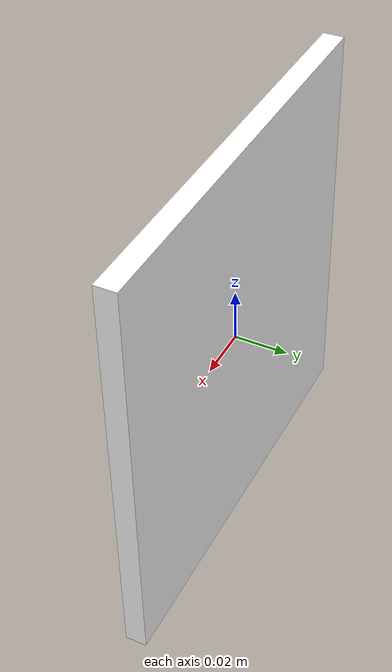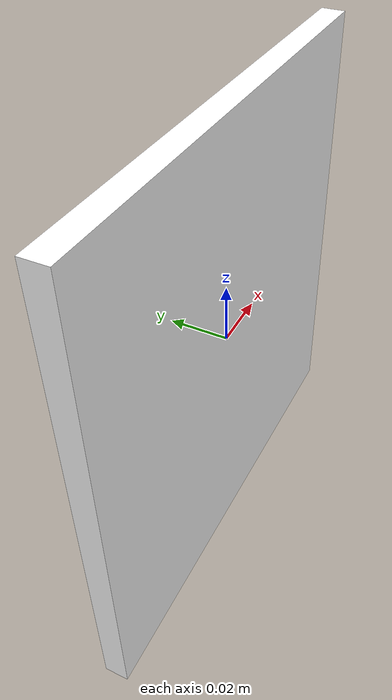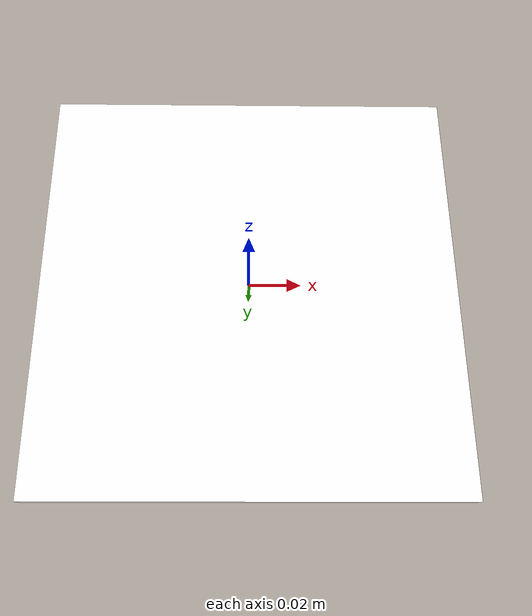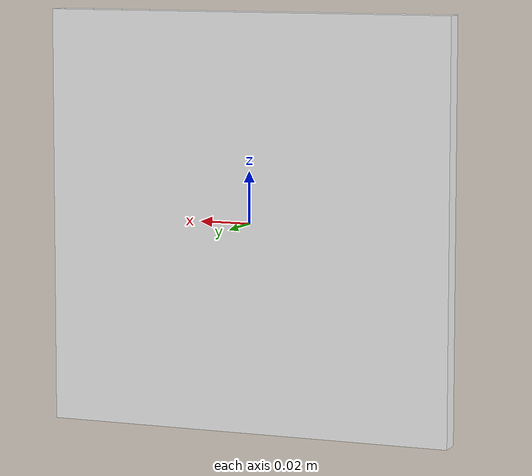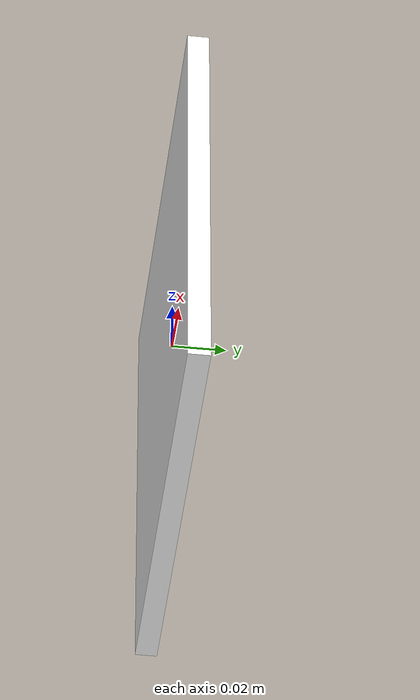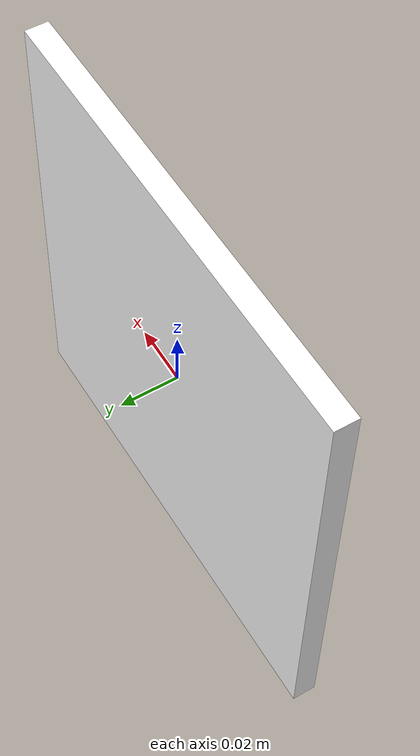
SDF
<?xml version="1.0"?>
<sdf version="1.8">
  <model name="apriltag_36h11_04">
    <static>true</static>
    <link name="link">
      <visual name="visual">
        <geometry>
          <box><size>0.16 0.008 0.16</size></box>
        </geometry>
        <material>
          <ambient>1 1 1 1</ambient>
          <diffuse>1 1 1 1</diffuse>
          <specular>0 0 0 1</specular>
          <pbr>
            <metal>
              <albedo_map>materials/textures/tag36_11_00004.png</albedo_map>
              <metalness>0.0</metalness>
              <roughness>1.0</roughness>
            </metal>
          </pbr>
        </material>
      </visual>
      <collision name="collision">
        <geometry>
          <box><size>0.16 0.008 0.16</size></box>
        </geometry>
      </collision>
    </link>
  </model>
</sdf>
